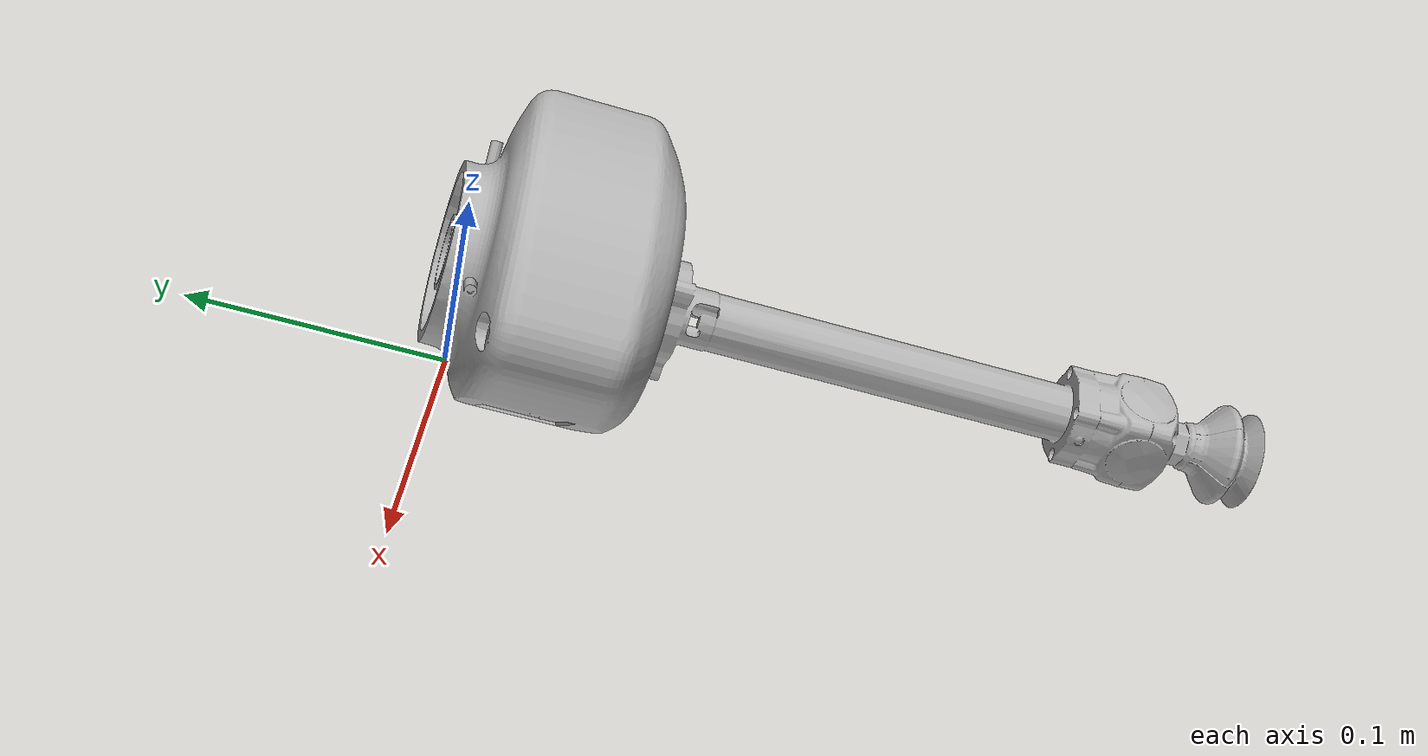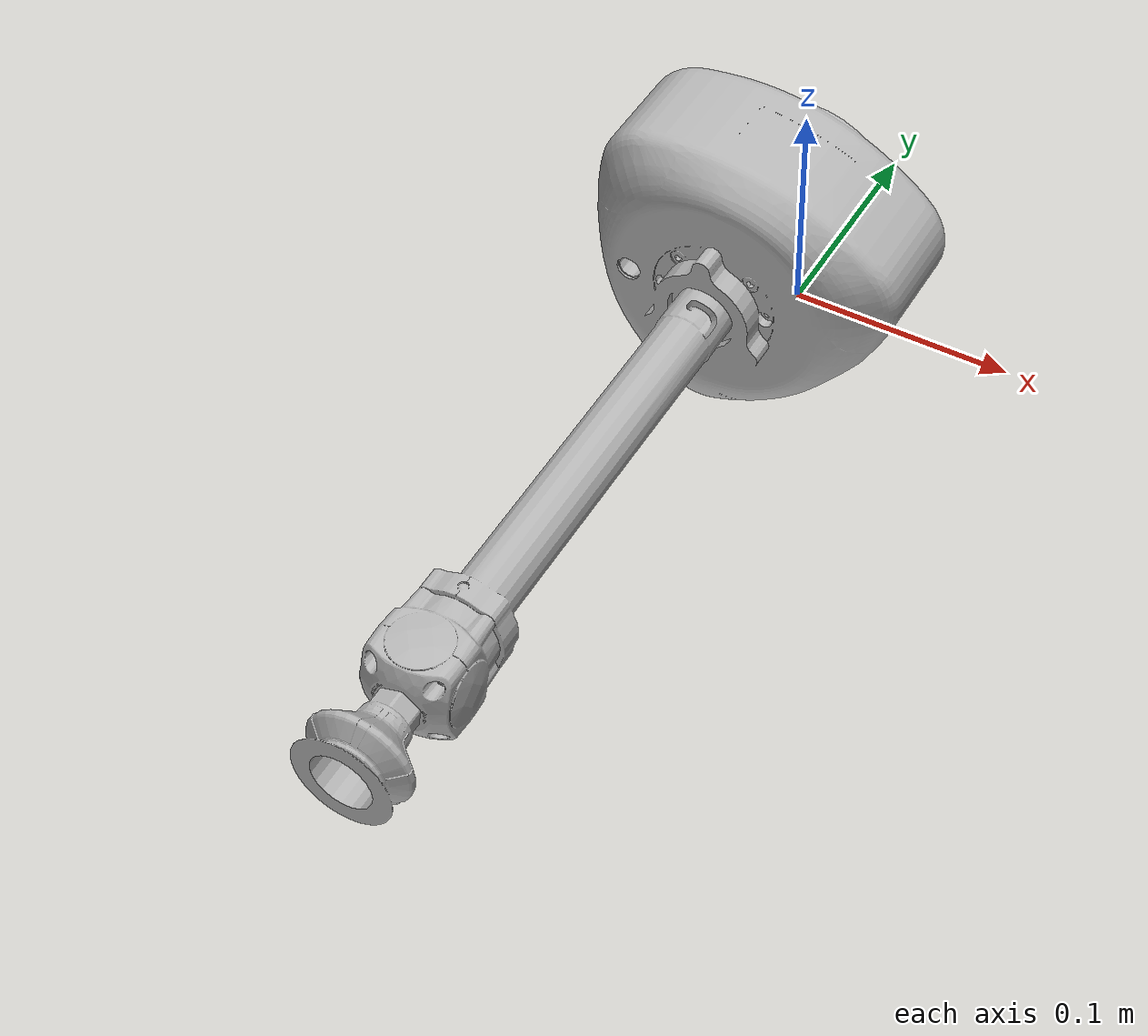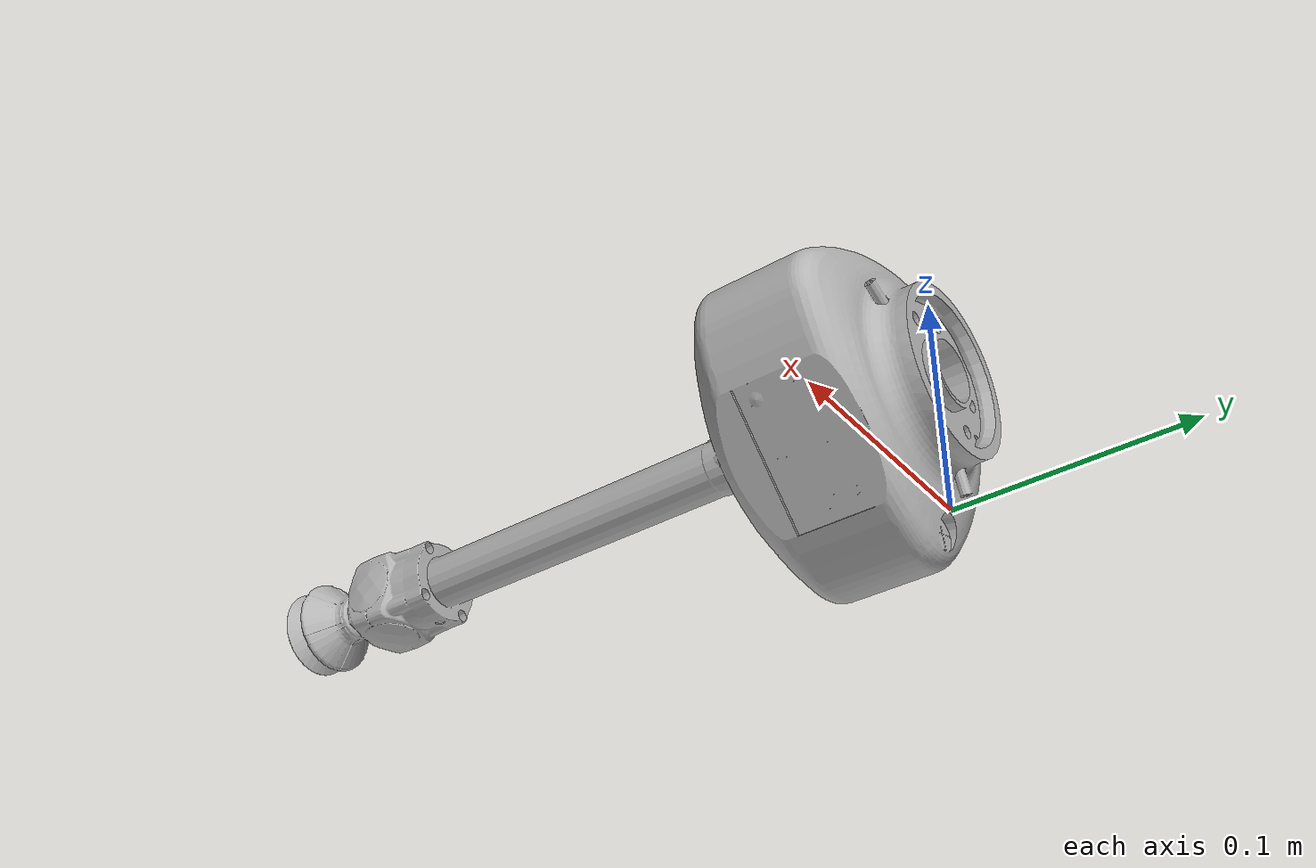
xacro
<?xml version="1.0" ?>
<robot name="Vaccume" xmlns:xacro="http://www.ros.org/wiki/xacro">

<xacro:include filename="$(find Vaccume_description)/urdf/materials.xacro" />
<xacro:include filename="$(find Vaccume_description)/urdf/Vaccume.trans" />
<xacro:include filename="$(find Vaccume_description)/urdf/Vaccume.gazebo" />
<link name="base_link">
  <inertial>
    <origin xyz="-0.0009694091187008012 -0.06077237045730904 0.06399399522278051" rpy="0 0 0"/>
    <mass value="8.457717281604213"/>
    <inertia ixx="0.047172" iyy="0.016022" izz="0.047169" ixy="8e-05" iyz="-9.3e-05" ixz="-0.000141"/>
  </inertial>
  <visual>
    <origin xyz="0 0 0" rpy="0 0 0"/>
    <geometry>
      <mesh filename="package://Vaccume_description/meshes/base_link.stl" scale="0.001 0.001 0.001"/>
    </geometry>
    <material name="silver"/>
  </visual>
  <collision>
    <origin xyz="0 0 0" rpy="0 0 0"/>
    <geometry>
      <mesh filename="package://Vaccume_description/meshes/base_link.stl" scale="0.001 0.001 0.001"/>
    </geometry>
  </collision>
</link>

</robot>

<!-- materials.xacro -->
<robot name="Vaccume" xmlns:xacro="http://www.ros.org/wiki/xacro" >

<material name="silver">
  <color rgba="0.700 0.700 0.700 1.000"/>
</material>

</robot>

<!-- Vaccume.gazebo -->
<robot name="Vaccume" xmlns:xacro="http://www.ros.org/wiki/xacro" >

<xacro:property name="body_color" value="Gazebo/Silver" />

<gazebo>
  <plugin name="control" filename="libgazebo_ros_control.so"/>
</gazebo>
<gazebo reference="base_link">
  <material>${body_color}</material>
  <mu1>0.2</mu1>
  <mu2>0.2</mu2>
  <selfCollide>true</selfCollide>
  <gravity>true</gravity>
</gazebo>

</robot>
